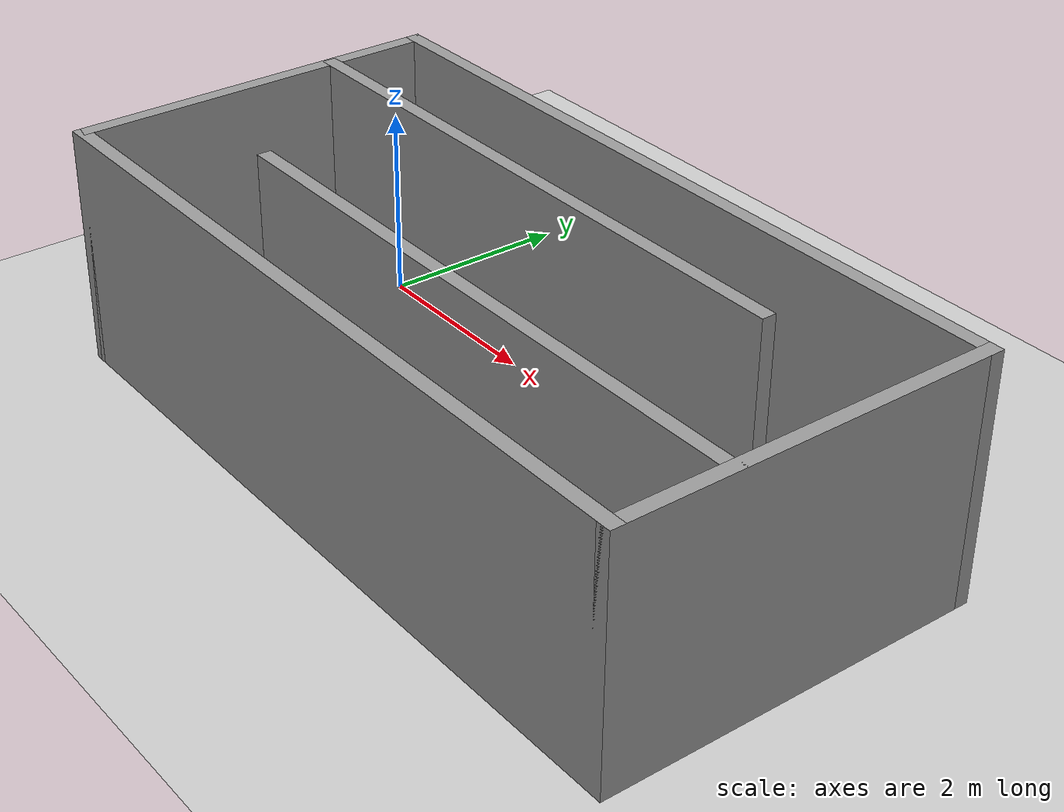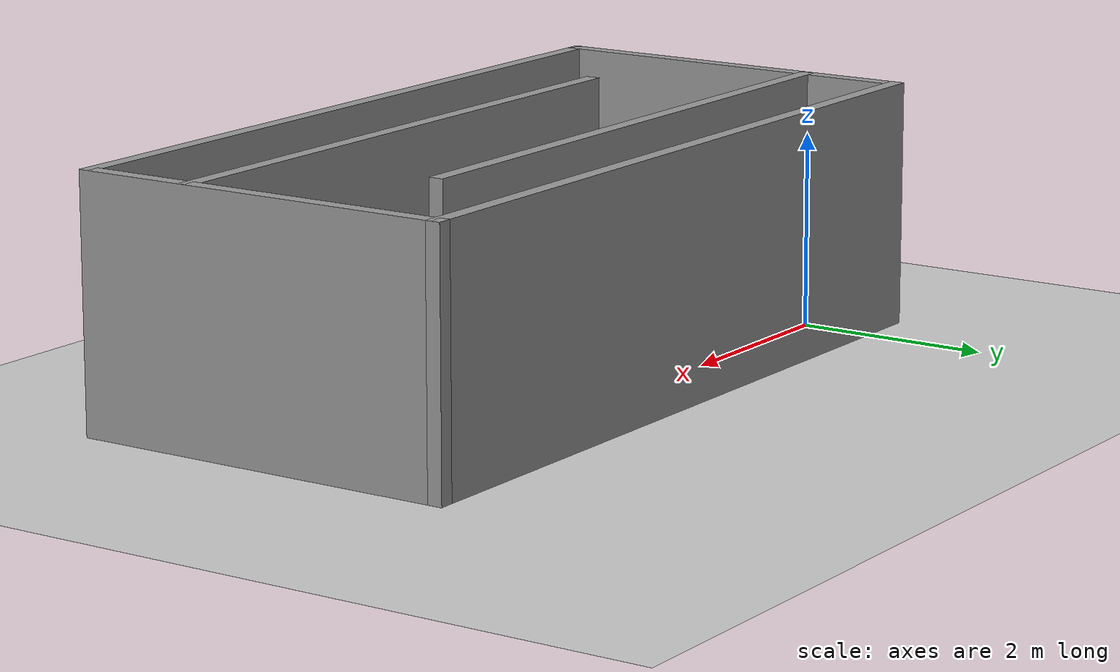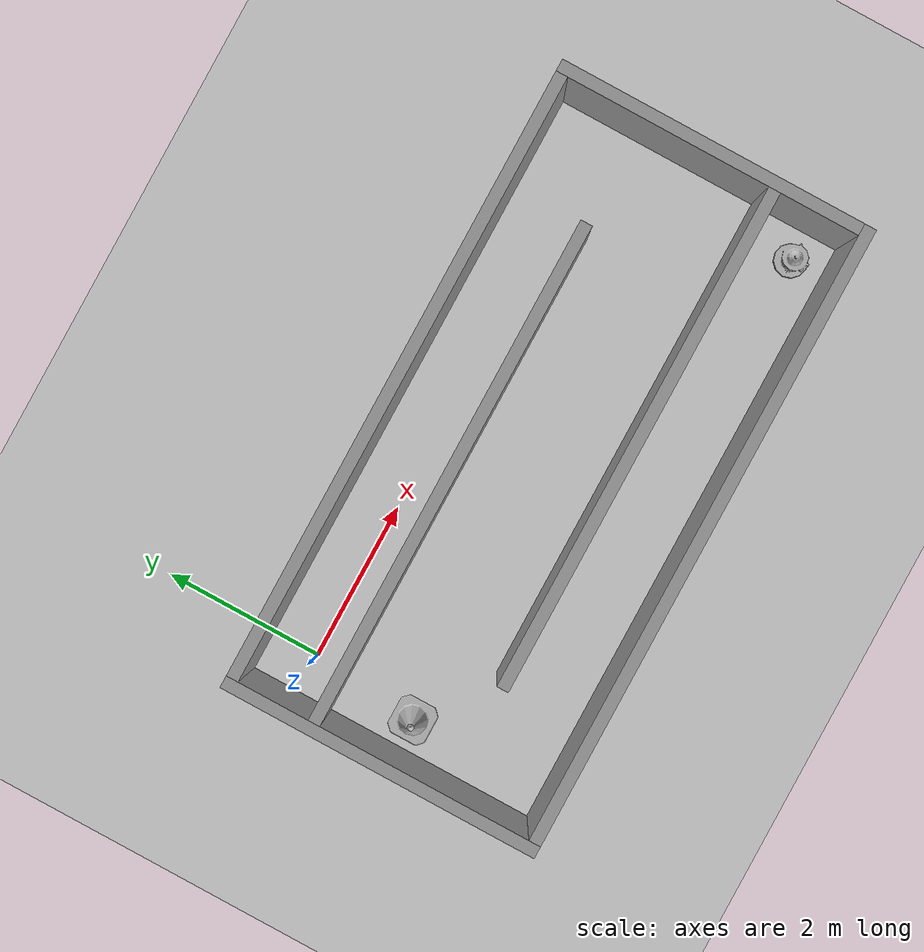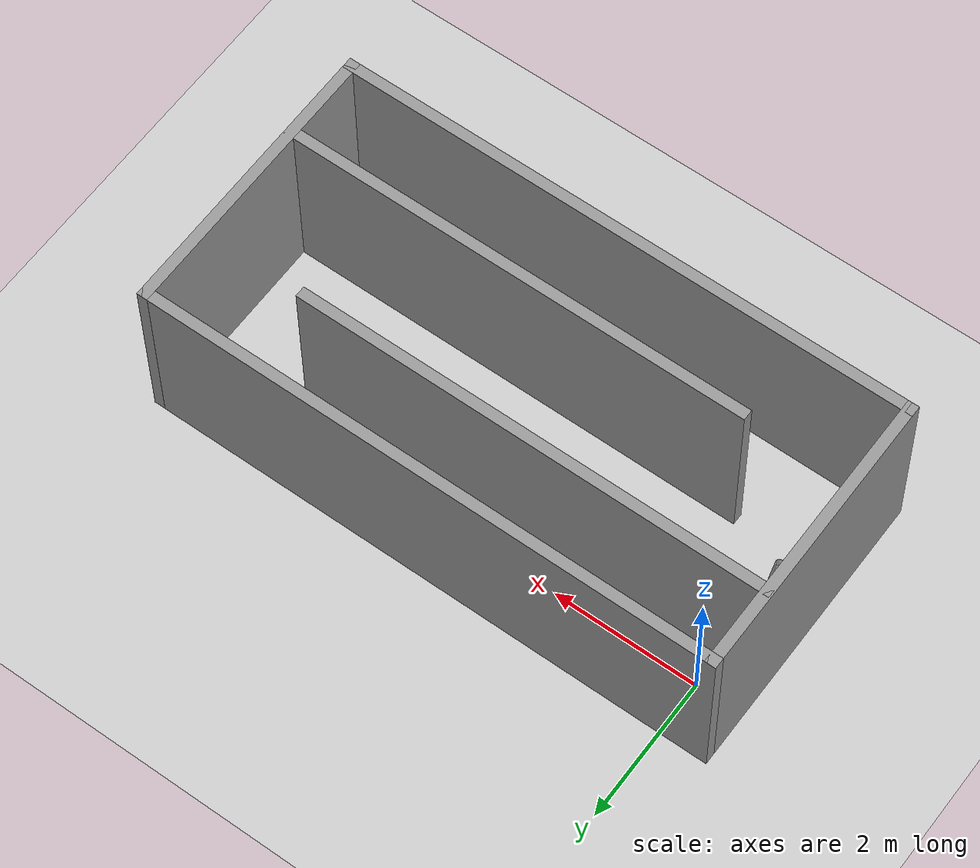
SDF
<sdf version="1.7">
 <world name="default">
  <light name="sun" type="directional">
   <pose>0 0 10 0 -0 0</pose>
   <diffuse>0.8 0.8 0.8 1</diffuse>
   <specular>0.2 0.2 0.2 1</specular>
   <attenuation>
    <range>1000</range>
    <constant>0.9</constant>
    <linear>0.01</linear>
    <quadratic>0.001</quadratic>
   </attenuation>
   <direction>-0.5 0.1 -0.9</direction>
   <spot><inner_angle>0</inner_angle><outer_angle>0</outer_angle><falloff>0</falloff></spot>
  </light>
  <model name="ground_plane">
   <static>1</static>
   <link name="link">
    <collision name="collision">
     <geometry><plane><normal>0 0 1</normal><size>100 100</size></plane></geometry>
     <surface>
      <contact><collide_bitmask>65535</collide_bitmask></contact>
      <friction><ode><mu>100</mu><mu2>50</mu2></ode></friction>
     </surface>
    </collision>
    <visual name="visual">
     <cast_shadows>0</cast_shadows>
     <geometry><plane><normal>0 0 1</normal><size>100 100</size></plane></geometry>
     <material>
      <script><uri>file://media/materials/scripts/gazebo.material</uri><name>Gazebo/Grey</name></script>
     </material>
    </visual>
   </link>
  </model>
  <gravity>0 0 -9.8</gravity>
  <magnetic_field>6e-06 2.3e-05 -4.2e-05</magnetic_field>
  <atmosphere type="adiabatic"/>
  <physics type="ode">
   <max_step_size>0.001</max_step_size>
   <real_time_factor>1</real_time_factor>
   <real_time_update_rate>1000</real_time_update_rate>
  </physics>
  <scene><ambient>0.4 0.4 0.4 1</ambient><background>0.7 0.7 0.7 1</background><shadows>1</shadows></scene>
  <spherical_coordinates>
   <surface_model>EARTH_WGS84</surface_model>
   <latitude_deg>0</latitude_deg>
   <longitude_deg>0</longitude_deg>
   <elevation>0</elevation>
   <heading_deg>0</heading_deg>
  </spherical_coordinates>
  <model name="test_world6">
   <pose>3.35236 -0.925067 0 0 -0 0</pose>
   <link name="Wall_0">
    <collision name="Wall_0_Collision">
     <geometry><box><size>4 0.15 2.5</size></box></geometry>
     <pose>0 0 1.25 0 -0 0</pose>
    </collision>
    <visual name="Wall_0_Visual">
     <pose>0 0 1.25 0 -0 0</pose>
     <geometry><box><size>4 0.15 2.5</size></box></geometry>
     <material>
      <script><uri>file://media/materials/scripts/gazebo.material</uri><name>Gazebo/Grey</name></script>
      <ambient>1 1 1 1</ambient>
     </material>
     <meta><layer>0</layer></meta>
    </visual>
    <pose>-3.925 -0.3375 0 0 -0 -1.5708</pose>
   </link>
   <link name="Wall_1">
    <collision name="Wall_1_Collision">
     <geometry><box><size>8 0.15 2.5</size></box></geometry>
     <pose>0 0 1.25 0 -0 0</pose>
    </collision>
    <visual name="Wall_1_Visual">
     <pose>0 0 1.25 0 -0 0</pose>
     <geometry><box><size>8 0.15 2.5</size></box></geometry>
     <material>
      <script><uri>file://media/materials/scripts/gazebo.material</uri><name>Gazebo/Grey</name></script>
      <ambient>1 1 1 1</ambient>
     </material>
     <meta><layer>0</layer></meta>
    </visual>
    <pose>0 -2.2625 0 0 -0 0</pose>
   </link>
   <link name="Wall_2">
    <collision name="Wall_2_Collision">
     <geometry><box><size>4 0.15 2.5</size></box></geometry>
     <pose>0 0 1.25 0 -0 0</pose>
    </collision>
    <visual name="Wall_2_Visual">
     <pose>0 0 1.25 0 -0 0</pose>
     <geometry><box><size>4 0.15 2.5</size></box></geometry>
     <material>
      <script><uri>file://media/materials/scripts/gazebo.material</uri><name>Gazebo/Grey</name></script>
      <ambient>1 1 1 1</ambient>
     </material>
     <meta><layer>0</layer></meta>
    </visual>
    <pose>3.925 -0.3375 0 0 -0 1.5708</pose>
   </link>
   <link name="Wall_3">
    <collision name="Wall_3_Collision">
     <geometry><box><size>8 0.15 2.5</size></box></geometry>
     <pose>0 0 1.25 0 -0 0</pose>
    </collision>
    <visual name="Wall_3_Visual">
     <pose>0 0 1.25 0 -0 0</pose>
     <geometry><box><size>8 0.15 2.5</size></box></geometry>
     <material>
      <script><uri>file://media/materials/scripts/gazebo.material</uri><name>Gazebo/Grey</name></script>
      <ambient>1 1 1 1</ambient>
     </material>
     <meta><layer>0</layer></meta>
    </visual>
    <pose>0 1.5875 0 0 -0 3.14159</pose>
   </link>
   <link name="Wall_5">
    <collision name="Wall_5_Collision">
     <geometry><box><size>6.5 0.15 2.5</size></box></geometry>
     <pose>0 0 1.25 0 -0 0</pose>
    </collision>
    <visual name="Wall_5_Visual">
     <pose>0 0 1.25 0 -0 0</pose>
     <geometry><box><size>6.5 0.15 2.5</size></box></geometry>
     <material>
      <script><uri>file://media/materials/scripts/gazebo.material</uri><name>Gazebo/Grey</name></script>
      <ambient>1 1 1 1</ambient>
     </material>
     <meta><layer>0</layer></meta>
    </visual>
    <pose>0.74 -1.1225 0 0 -0 3.14159</pose>
   </link>
   <link name="Wall_7">
    <collision name="Wall_7_Collision">
     <geometry><box><size>6.5 0.15 2.5</size></box></geometry>
     <pose>0 0 1.25 0 -0 0</pose>
    </collision>
    <visual name="Wall_7_Visual">
     <pose>0 0 1.25 0 -0 0</pose>
     <geometry><box><size>6.5 0.15 2.5</size></box></geometry>
     <material>
      <script><uri>file://media/materials/scripts/gazebo.material</uri><name>Gazebo/Grey</name></script>
      <ambient>1 1 1 1</ambient>
     </material>
     <meta><layer>0</layer></meta>
    </visual>
    <pose>-0.73 0.5475 0 0 -0 0</pose>
   </link>
   <static>1</static>
  </model>
  <model name="Construction Cone">
   <link name="link">
    <collision name="collision">
     <geometry>
      <mesh><scale>10 10 10</scale><uri>model://construction_cone/meshes/construction_cone.dae</uri></mesh>
     </geometry>
    </collision>
    <visual name="visual">
     <geometry>
      <mesh><scale>10 10 10</scale><uri>model://construction_cone/meshes/construction_cone.dae</uri></mesh>
     </geometry>
    </visual>
    <inertial>
     <inertia><ixx>1</ixx><ixy>0</ixy><ixz>0</ixz><iyy>1</iyy><iyz>0</iyz><izz>1</izz></inertia>
     <mass>1</mass>
    </inertial>
   </link>
   <pose>-0.14106 -1.37022 -0 0 -0 0</pose>
  </model>
  <model name="fire_hydrant">
   <static>1</static>
   <link name="link">
    <collision name="collision">
     <geometry><mesh><uri>model://fire_hydrant/meshes/fire_hydrant.dae</uri></mesh></geometry>
    </collision>
    <visual name="visual">
     <geometry><mesh><uri>model://fire_hydrant/meshes/fire_hydrant.dae</uri></mesh></geometry>
    </visual>
   </link>
   <pose>6.82019 -2.69857 0 0 -0 0</pose>
  </model>
 </world>
</sdf>
